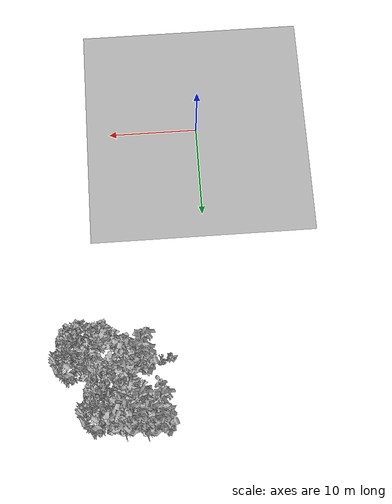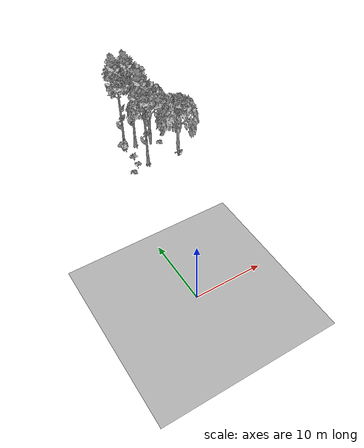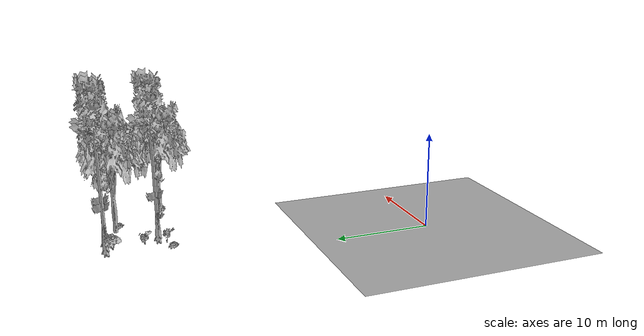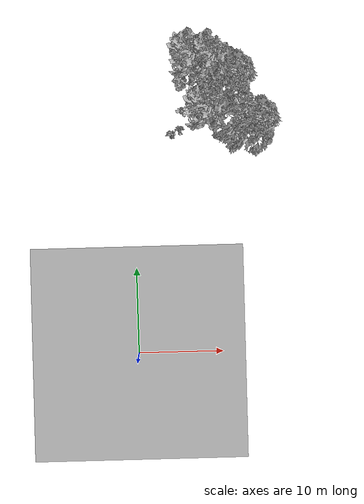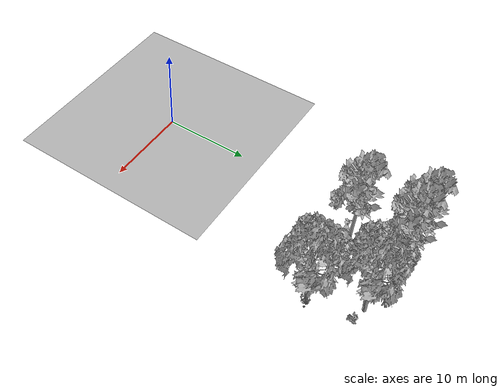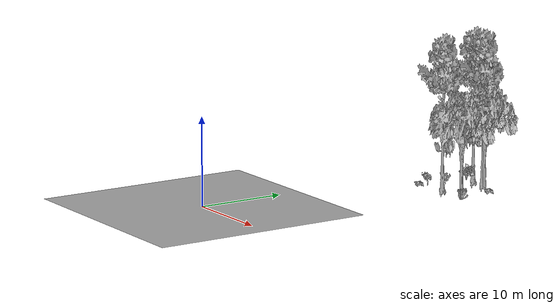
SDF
<sdf version="1.7">
 <world name="default">
  <model name="ground_plane">
   <static>1</static>
   <link name="link">
    <collision name="collision">
     <pose>-50 0 0 0 -0 0</pose>
     <geometry><plane><normal>0 0 1</normal><size>80 80</size></plane></geometry>
     <surface><contact><ode><min_depth>0.01</min_depth><max_vel>0</max_vel></ode></contact></surface>
    </collision>
    <visual name="grass">
     <cast_shadows>0</cast_shadows>
     <geometry>
      <mesh>
       <scale>0.46714285714285714 0.46714285714285714 0.1</scale>
       <uri>file://grass_plane/meshes/grass_plane.dae</uri>
      </mesh>
     </geometry>
    </visual>
   </link>
  </model>
  <model name="Tree 124">
   <static>1</static>
   <pose>7.9801221911394435 31.978864737869145 0 1.57079 -0 0</pose>
   <link name="link">
    <collision name="collision">
     <geometry><mesh><scale>3.5 5 3.5</scale><uri>model://tree_9/meshes/tree_9.obj</uri></mesh></geometry>
    </collision>
    <visual name="visual">
     <geometry><mesh><scale>3.5 5 3.5</scale><uri>model://tree_9/meshes/tree_9.obj</uri></mesh></geometry>
    </visual>
   </link>
  </model>
  <model name="Tree 188">
   <static>1</static>
   <pose>6.028158265979428 32.12038359678927 0 1.57079 -0 0</pose>
   <link name="link">
    <collision name="collision">
     <geometry><mesh><scale>3.5 5 3.5</scale><uri>model://tree_9/meshes/tree_9.obj</uri></mesh></geometry>
    </collision>
    <visual name="visual">
     <geometry><mesh><scale>3.5 5 3.5</scale><uri>model://tree_9/meshes/tree_9.obj</uri></mesh></geometry>
    </visual>
   </link>
  </model>
  <model name="Tree 192">
   <static>1</static>
   <pose>12.550839380451066 25.61632517155782 0 1.57079 -0 0</pose>
   <link name="link">
    <collision name="collision">
     <geometry><mesh><scale>3.5 5 3.5</scale><uri>model://tree_2/meshes/tree_2.obj</uri></mesh></geometry>
    </collision>
    <visual name="visual">
     <geometry><mesh><scale>3.5 5 3.5</scale><uri>model://tree_2/meshes/tree_2.obj</uri></mesh></geometry>
    </visual>
   </link>
  </model>
  <model name="Tree 414">
   <static>1</static>
   <pose>7.536180135844759 26.728845158398826 0 1.57079 -0 0</pose>
   <link name="link">
    <collision name="collision">
     <geometry><mesh><scale>3.5 5 3.5</scale><uri>model://tree_9/meshes/tree_9.obj</uri></mesh></geometry>
    </collision>
    <visual name="visual">
     <geometry><mesh><scale>3.5 5 3.5</scale><uri>model://tree_9/meshes/tree_9.obj</uri></mesh></geometry>
    </visual>
   </link>
  </model>
  <model name="Tree 637">
   <static>1</static>
   <pose>10.068463439873888 30.616660935985664 0 1.57079 -0 0</pose>
   <link name="link">
    <collision name="collision">
     <geometry><mesh><scale>3.5 5 3.5</scale><uri>model://tree_2/meshes/tree_2.obj</uri></mesh></geometry>
    </collision>
    <visual name="visual">
     <geometry><mesh><scale>3.5 5 3.5</scale><uri>model://tree_2/meshes/tree_2.obj</uri></mesh></geometry>
    </visual>
   </link>
  </model>
  <model name="Bush 33">
   <static>1</static>
   <pose>5.8581179851814795 28.36998532078465 0 1.57079 -0 0</pose>
   <link name="link">
    <collision name="collision">
     <geometry><mesh><scale>2 2 2</scale><uri>model://bush_0/meshes/bush_0.obj</uri></mesh></geometry>
     <surface><contact><collide_without_contact>false</collide_without_contact></contact></surface>
    </collision>
    <visual name="visual">
     <geometry><mesh><scale>2 2 2</scale><uri>model://bush_0/meshes/bush_0.obj</uri></mesh></geometry>
    </visual>
   </link>
  </model>
  <model name="Bush 52">
   <static>1</static>
   <pose>5.621043985920544 31.472661080598996 0 1.57079 -0 0</pose>
   <link name="link">
    <collision name="collision">
     <geometry><mesh><scale>2 2 2</scale><uri>model://bush_1/meshes/bush_1.obj</uri></mesh></geometry>
     <surface><contact><collide_without_contact>false</collide_without_contact></contact></surface>
    </collision>
    <visual name="visual">
     <geometry><mesh><scale>2 2 2</scale><uri>model://bush_1/meshes/bush_1.obj</uri></mesh></geometry>
    </visual>
   </link>
  </model>
  <model name="Bush 129">
   <static>1</static>
   <pose>5.462572044095012 26.251799672474704 0 1.57079 -0 0</pose>
   <link name="link">
    <collision name="collision">
     <geometry><mesh><scale>2 2 2</scale><uri>model://bush_5/meshes/bush_5.obj</uri></mesh></geometry>
     <surface><contact><collide_without_contact>false</collide_without_contact></contact></surface>
    </collision>
    <visual name="visual">
     <geometry><mesh><scale>2 2 2</scale><uri>model://bush_5/meshes/bush_5.obj</uri></mesh></geometry>
    </visual>
   </link>
  </model>
  <model name="Bush 216">
   <static>1</static>
   <pose>11.548346273018247 30.128815406344827 0 1.57079 -0 0</pose>
   <link name="link">
    <collision name="collision">
     <geometry><mesh><scale>2 2 2</scale><uri>model://bush_2/meshes/bush_2.obj</uri></mesh></geometry>
     <surface><contact><collide_without_contact>false</collide_without_contact></contact></surface>
    </collision>
    <visual name="visual">
     <geometry><mesh><scale>2 2 2</scale><uri>model://bush_2/meshes/bush_2.obj</uri></mesh></geometry>
    </visual>
   </link>
  </model>
  <model name="Bush 615">
   <static>1</static>
   <pose>4.408224996937882 25.729092684855104 0 1.57079 -0 0</pose>
   <link name="link">
    <collision name="collision">
     <geometry><mesh><scale>2 2 2</scale><uri>model://bush_2/meshes/bush_2.obj</uri></mesh></geometry>
     <surface><contact><collide_without_contact>false</collide_without_contact></contact></surface>
    </collision>
    <visual name="visual">
     <geometry><mesh><scale>2 2 2</scale><uri>model://bush_2/meshes/bush_2.obj</uri></mesh></geometry>
    </visual>
   </link>
  </model>
  <model name="Bush 627">
   <static>1</static>
   <pose>12.737144726805788 25.50697247992011 0 1.57079 -0 0</pose>
   <link name="link">
    <collision name="collision">
     <geometry><mesh><scale>2 2 2</scale><uri>model://bush_4/meshes/bush_4.obj</uri></mesh></geometry>
     <surface><contact><collide_without_contact>false</collide_without_contact></contact></surface>
    </collision>
    <visual name="visual">
     <geometry><mesh><scale>2 2 2</scale><uri>model://bush_4/meshes/bush_4.obj</uri></mesh></geometry>
    </visual>
   </link>
  </model>
 </world>
</sdf>
